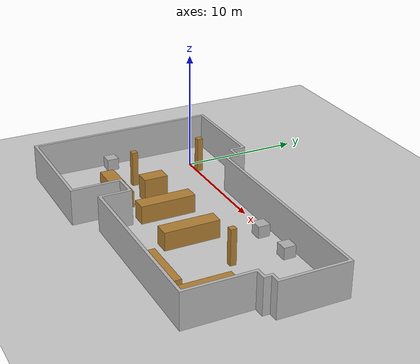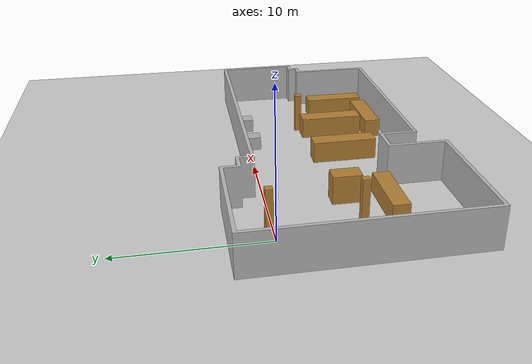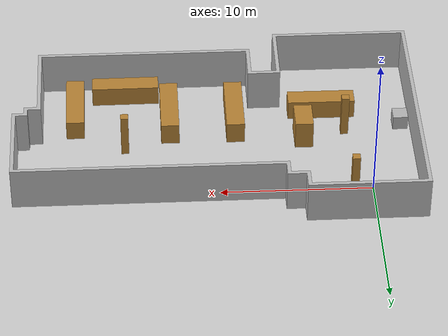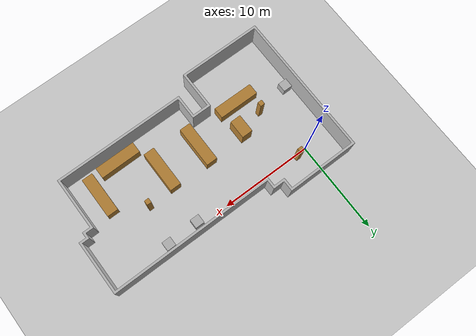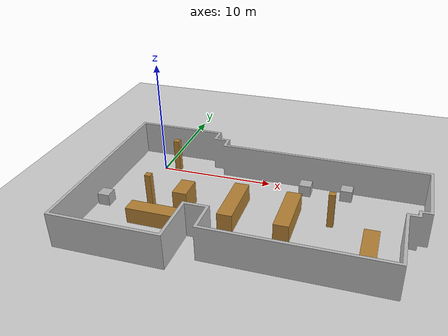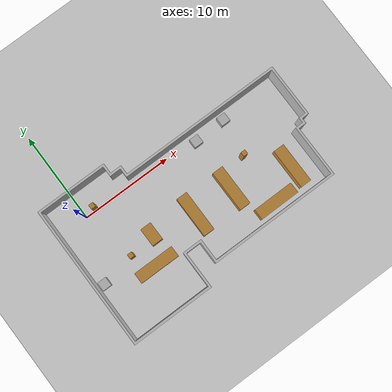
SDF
<sdf version='1.10'>
  <world name='factory'>
    <physics name='1ms' type='ignored'>
      <max_step_size>0.001</max_step_size>
      <real_time_factor>1</real_time_factor>
      <real_time_update_rate>1000</real_time_update_rate>
    </physics>
    <plugin name='gz::sim::systems::Physics' filename='gz-sim-physics-system'/>
    <plugin name='gz::sim::systems::UserCommands' filename='gz-sim-user-commands-system'/>
    <plugin name='gz::sim::systems::SceneBroadcaster' filename='gz-sim-scene-broadcaster-system'/>
    <plugin name='gz::sim::systems::Sensors' filename='gz-sim-sensors-system'>
      <render_engine>ogre2</render_engine>
    </plugin>
    <plugin name='gz::sim::systems::Imu' filename='gz-sim-imu-system'/>
    <plugin name='gz::sim::systems::Contact' filename='gz-sim-contact-system'/>
    <gravity>0 0 -9.8000000000000007</gravity>
    <magnetic_field>5.5644999999999998e-06 2.2875799999999999e-05 -4.2388400000000002e-05</magnetic_field>
    <atmosphere type='adiabatic'/>
    <scene>
      <ambient>0.400000006 0.400000006 0.400000006 1</ambient>
      <background>0.699999988 0.699999988 0.699999988 1</background>
      <shadows>true</shadows>
    </scene>
    <model name='ground_plane'>
      <static>true</static>
      <link name='link'>
        <collision name='collision'>
          <geometry>
            <plane>
              <normal>0 0 1</normal>
              <size>100 100</size>
            </plane>
          </geometry>
          <surface>
            <friction>
              <ode/>
            </friction>
            <bounce/>
            <contact/>
          </surface>
        </collision>
        <visual name='visual'>
          <geometry>
            <plane>
              <normal>0 0 1</normal>
              <size>100 100</size>
            </plane>
          </geometry>
          <material>
            <ambient>0.800000012 0.800000012 0.800000012 1</ambient>
            <diffuse>0.800000012 0.800000012 0.800000012 1</diffuse>
            <specular>0.5 0.5 0.5 1</specular>
          </material>
        </visual>
        <pose>0 0 0 0 0 0</pose>
        <inertial>
          <pose>0 0 0 0 0 0</pose>
          <mass>1</mass>
          <inertia>
            <ixx>1</ixx>
            <ixy>0</ixy>
            <ixz>0</ixz>
            <iyy>1</iyy>
            <iyz>0</iyz>
            <izz>1</izz>
          </inertia>
        </inertial>
        <enable_wind>false</enable_wind>
      </link>
      <pose>0 0 0 0 0 0</pose>
      <self_collide>false</self_collide>
    </model>
    <model name='table'>
      <static>true</static>
      <pose>4.1930999755859375 -5.3373074531555176 1 0 0 0</pose>
      <link name='link'>
        <collision name='collision'>
          <geometry>
            <box>
              <size>1.2 2 2</size>
            </box>
          </geometry>
          <surface>
            <friction>
              <ode/>
            </friction>
            <bounce/>
            <contact/>
          </surface>
        </collision>
        <visual name='visual'>
          <geometry>
            <box>
              <size>1.2 2 2</size>
            </box>
          </geometry>
          <material>
            <ambient>0.699999988 0.5 0.200000003 1</ambient>
            <diffuse>0.699999988 0.5 0.200000003 1</diffuse>
          </material>
        </visual>
        <pose>0 0 0 0 0 0</pose>
        <inertial>
          <pose>0 0 0 0 0 0</pose>
          <mass>1</mass>
          <inertia>
            <ixx>1</ixx>
            <ixy>0</ixy>
            <ixz>0</ixz>
            <iyy>1</iyy>
            <iyz>0</iyz>
            <izz>1</izz>
          </inertia>
        </inertial>
        <enable_wind>false</enable_wind>
      </link>
      <self_collide>false</self_collide>
    </model>
    <model name='fc_equipment'>
      <static>true</static>
      <pose>13.126899719238281 -6.4230499267578125 1.6 0 0 0</pose>
      <link name='link'>
        <collision name='collision'>
          <geometry>
            <box>
              <size>1.2 4.5 1.5</size>
            </box>
          </geometry>
          <surface>
            <friction>
              <ode/>
            </friction>
            <bounce/>
            <contact/>
          </surface>
        </collision>
        <visual name='visual'>
          <geometry>
            <box>
              <size>1.2 4.5 1.5</size>
            </box>
          </geometry>
          <material>
            <ambient>0.699999988 0.5 0.200000003 1</ambient>
            <diffuse>0.699999988 0.5 0.200000003 1</diffuse>
          </material>
        </visual>
        <pose>0 0 0 0 0 0</pose>
        <inertial>
          <pose>0 0 0 0 0 0</pose>
          <mass>1</mass>
          <inertia>
            <ixx>1</ixx>
            <ixy>0</ixy>
            <ixz>0</ixz>
            <iyy>1</iyy>
            <iyz>0</iyz>
            <izz>1</izz>
          </inertia>
        </inertial>
        <enable_wind>false</enable_wind>
      </link>
      <self_collide>false</self_collide>
    </model>
    <model name='fc_equipment2'>
      <static>true</static>
      <pose>8.7881498336791992 -6.3464679718017578 1.6 0 0 0</pose>
      <link name='link'>
        <collision name='collision'>
          <geometry>
            <box>
              <size>1.2 4.5 1.5</size>
            </box>
          </geometry>
          <surface>
            <friction>
              <ode/>
            </friction>
            <bounce/>
            <contact/>
          </surface>
        </collision>
        <visual name='visual'>
          <geometry>
            <box>
              <size>1.2 4.5 1.5</size>
            </box>
          </geometry>
          <material>
            <ambient>0.699999988 0.5 0.200000003 1</ambient>
            <diffuse>0.699999988 0.5 0.200000003 1</diffuse>
          </material>
        </visual>
        <pose>0 0 0 0 0 0</pose>
        <inertial>
          <pose>0 0 0 0 0 0</pose>
          <mass>1</mass>
          <inertia>
            <ixx>1</ixx>
            <ixy>0</ixy>
            <ixz>0</ixz>
            <iyy>1</iyy>
            <iyz>0</iyz>
            <izz>1</izz>
          </inertia>
        </inertial>
        <enable_wind>false</enable_wind>
      </link>
      <self_collide>false</self_collide>
    </model>
    <model name='fc_equipment3'>
      <static>true</static>
      <pose>16.037300109863281 -10.070199966430664 0.6 0 0 1.575780028147536</pose>
      <link name='link'>
        <collision name='collision'>
          <geometry>
            <box>
              <size>1.2 4.5 1.5</size>
            </box>
          </geometry>
          <surface>
            <friction>
              <ode/>
            </friction>
            <bounce/>
            <contact/>
          </surface>
        </collision>
        <visual name='visual'>
          <geometry>
            <box>
              <size>1.2 4.5 1.5</size>
            </box>
          </geometry>
          <material>
            <ambient>0.699999988 0.5 0.200000003 1</ambient>
            <diffuse>0.699999988 0.5 0.200000003 1</diffuse>
          </material>
        </visual>
        <pose>0 0 0 0 0 0</pose>
        <inertial>
          <pose>0 0 0 0 0 0</pose>
          <mass>1</mass>
          <inertia>
            <ixx>1</ixx>
            <ixy>0</ixy>
            <ixz>0</ixz>
            <iyy>1</iyy>
            <iyz>0</iyz>
            <izz>1</izz>
          </inertia>
        </inertial>
        <enable_wind>false</enable_wind>
      </link>
      <self_collide>false</self_collide>
    </model>
    <model name='fc_equipment4'>
      <static>true</static>
      <pose>19.447999954223633 -8.2234296798706055 0.6 0 0 0</pose>
      <link name='link'>
        <collision name='collision'>
          <geometry>
            <box>
              <size>1.2 4.5 1.5</size>
            </box>
          </geometry>
          <surface>
            <friction>
              <ode/>
            </friction>
            <bounce/>
            <contact/>
          </surface>
        </collision>
        <visual name='visual'>
          <geometry>
            <box>
              <size>1.2 4.5 1.5</size>
            </box>
          </geometry>
          <material>
            <ambient>0.699999988 0.5 0.200000003 1</ambient>
            <diffuse>0.699999988 0.5 0.200000003 1</diffuse>
          </material>
        </visual>
        <pose>0 0 0 0 0 0</pose>
        <inertial>
          <pose>0 0 0 0 0 0</pose>
          <mass>1</mass>
          <inertia>
            <ixx>1</ixx>
            <ixy>0</ixy>
            <ixz>0</ixz>
            <iyy>1</iyy>
            <iyz>0</iyz>
            <izz>1</izz>
          </inertia>
        </inertial>
        <enable_wind>false</enable_wind>
      </link>
      <self_collide>false</self_collide>
    </model>
    <model name='fc_equipment5'>
      <static>true</static>
      <pose>2.7992498874664307 -7.999539852142334 0.6 0 0 1.567839977365141</pose>
      <link name='link'>
        <collision name='collision'>
          <geometry>
            <box>
              <size>1.2 4.5 1.5</size>
            </box>
          </geometry>
          <surface>
            <friction>
              <ode/>
            </friction>
            <bounce/>
            <contact/>
          </surface>
        </collision>
        <visual name='visual'>
          <geometry>
            <box>
              <size>1.2 4.5 1.5</size>
            </box>
          </geometry>
          <material>
            <ambient>0.699999988 0.5 0.200000003 1</ambient>
            <diffuse>0.699999988 0.5 0.200000003 1</diffuse>
          </material>
        </visual>
        <pose>0 0 0 0 0 0</pose>
        <inertial>
          <pose>0 0 0 0 0 0</pose>
          <mass>1</mass>
          <inertia>
            <ixx>1</ixx>
            <ixy>0</ixy>
            <ixz>0</ixz>
            <iyy>1</iyy>
            <iyz>0</iyz>
            <izz>1</izz>
          </inertia>
        </inertial>
        <enable_wind>false</enable_wind>
      </link>
      <self_collide>false</self_collide>
    </model>
    <model name='my_mesh'>
      <pose>-3.7092299461364746 3.1429786682128906 0 0 0 0</pose>
      <static>true</static>
      <link name='body'>
        <collision name='collision'>
          <geometry>
            <mesh>
              <uri>file://outer_wall.dae</uri>
            </mesh>
          </geometry>
        </collision>
        <visual name='visual'>
          <geometry>
            <mesh>
              <uri>file://outer_wall.dae</uri>
            </mesh>
          </geometry>
        </visual>
        <pose>0 0 0 0 0 0</pose>
        <inertial>
          <pose>0 0 0 0 0 0</pose>
          <mass>1</mass>
          <inertia>
            <ixx>1</ixx>
            <ixy>0</ixy>
            <ixz>0</ixz>
            <iyy>1</iyy>
            <iyz>0</iyz>
            <izz>1</izz>
          </inertia>
        </inertial>
        <enable_wind>false</enable_wind>
      </link>
      <self_collide>false</self_collide>
    </model>
    <model name='box1_1'>
      <static>true</static>
      <pose>1.2341885745444152 0.25707381157128628 1.5 0 0 0</pose>
      <link name='link'>
        <collision name='collision'>
          <geometry>
            <box>
              <size>0.5 0.5 3</size>
            </box>
          </geometry>
          <surface>
            <friction>
              <ode/>
            </friction>
            <bounce/>
            <contact/>
          </surface>
        </collision>
        <visual name='visual'>
          <geometry>
            <box>
              <size>0.5 0.5 3</size>
            </box>
          </geometry>
          <material>
            <ambient>0.699999988 0.5 0.200000003 1</ambient>
            <diffuse>0.699999988 0.5 0.200000003 1</diffuse>
          </material>
        </visual>
        <pose>0 0 0 0 0 0</pose>
        <inertial>
          <pose>0 0 0 0 0 0</pose>
          <mass>1</mass>
          <inertia>
            <ixx>1</ixx>
            <ixy>0</ixy>
            <ixz>0</ixz>
            <iyy>1</iyy>
            <iyz>0</iyz>
            <izz>1</izz>
          </inertia>
        </inertial>
        <enable_wind>false</enable_wind>
      </link>
      <self_collide>false</self_collide>
    </model>
    <model name='box1_2'>
      <static>true</static>
      <pose>1.3824295143292904 -5.8360870103904343 1.5 0 0 0</pose>
      <link name='link'>
        <collision name='collision'>
          <geometry>
            <box>
              <size>0.5 0.5 3</size>
            </box>
          </geometry>
          <surface>
            <friction>
              <ode/>
            </friction>
            <bounce/>
            <contact/>
          </surface>
        </collision>
        <visual name='visual'>
          <geometry>
            <box>
              <size>0.5 0.5 3</size>
            </box>
          </geometry>
          <material>
            <ambient>0.699999988 0.5 0.200000003 1</ambient>
            <diffuse>0.699999988 0.5 0.200000003 1</diffuse>
          </material>
        </visual>
        <pose>0 0 0 0 0 0</pose>
        <inertial>
          <pose>0 0 0 0 0 0</pose>
          <mass>1</mass>
          <inertia>
            <ixx>1</ixx>
            <ixy>0</ixy>
            <ixz>0</ixz>
            <iyy>1</iyy>
            <iyz>0</iyz>
            <izz>1</izz>
          </inertia>
        </inertial>
        <enable_wind>false</enable_wind>
      </link>
      <self_collide>false</self_collide>
    </model>
    <model name='box'>
      <pose>-2.4393828606766554 -6.4323263085781379 0.49999999980497606 1.0048033485058014e-21 -2.4640853465547739e-21 -3.9210766489770922e-22</pose>
      <link name='box_link'>
        <inertial>
          <inertia>
            <ixx>0.16666</ixx>
            <ixy>0</ixy>
            <ixz>0</ixz>
            <iyy>0.16666</iyy>
            <iyz>0</iyz>
            <izz>0.16666</izz>
          </inertia>
          <mass>1</mass>
          <pose>0 0 0 0 0 0</pose>
        </inertial>
        <collision name='box_collision'>
          <geometry>
            <box>
              <size>1 1 1</size>
            </box>
          </geometry>
          <surface>
            <friction>
              <ode/>
            </friction>
            <bounce/>
            <contact/>
          </surface>
        </collision>
        <visual name='box_visual'>
          <geometry>
            <box>
              <size>1 1 1</size>
            </box>
          </geometry>
          <material>
            <ambient>0.300000012 0.300000012 0.300000012 1</ambient>
            <diffuse>0.699999988 0.699999988 0.699999988 1</diffuse>
            <specular>1 1 1 1</specular>
          </material>
        </visual>
        <pose>0 0 0 0 0 0</pose>
        <enable_wind>false</enable_wind>
      </link>
      <static>false</static>
      <self_collide>false</self_collide>
    </model>
    <model name='box_0'>
      <pose>13.343768638412651 -0.45436367956171964 0.49999999980497606 1.0048033485058014e-21 -2.4640853465547739e-21 -3.9210766489770922e-22</pose>
      <link name='box_link'>
        <inertial>
          <inertia>
            <ixx>0.16666</ixx>
            <ixy>0</ixy>
            <ixz>0</ixz>
            <iyy>0.16666</iyy>
            <iyz>0</iyz>
            <izz>0.16666</izz>
          </inertia>
          <mass>1</mass>
          <pose>0 0 0 0 0 0</pose>
        </inertial>
        <collision name='box_collision'>
          <geometry>
            <box>
              <size>1 1 1</size>
            </box>
          </geometry>
          <surface>
            <friction>
              <ode/>
            </friction>
            <bounce/>
            <contact/>
          </surface>
        </collision>
        <visual name='box_visual'>
          <geometry>
            <box>
              <size>1 1 1</size>
            </box>
          </geometry>
          <material>
            <ambient>0.300000012 0.300000012 0.300000012 1</ambient>
            <diffuse>0.699999988 0.699999988 0.699999988 1</diffuse>
            <specular>1 1 1 1</specular>
          </material>
        </visual>
        <pose>0 0 0 0 0 0</pose>
        <enable_wind>false</enable_wind>
      </link>
      <static>false</static>
      <self_collide>false</self_collide>
    </model>
    <model name='box_1'>
      <pose>16.842394125456206 -0.31724643124007912 0.49999999980497606 1.0048033485058014e-21 -2.4640853465547739e-21 -3.9210766489770922e-22</pose>
      <link name='box_link'>
        <inertial>
          <inertia>
            <ixx>0.16666</ixx>
            <ixy>0</ixy>
            <ixz>0</ixz>
            <iyy>0.16666</iyy>
            <iyz>0</iyz>
            <izz>0.16666</izz>
          </inertia>
          <mass>1</mass>
          <pose>0 0 0 0 0 0</pose>
        </inertial>
        <collision name='box_collision'>
          <geometry>
            <box>
              <size>1 1 1</size>
            </box>
          </geometry>
          <surface>
            <friction>
              <ode/>
            </friction>
            <bounce/>
            <contact/>
          </surface>
        </collision>
        <visual name='box_visual'>
          <geometry>
            <box>
              <size>1 1 1</size>
            </box>
          </geometry>
          <material>
            <ambient>0.300000012 0.300000012 0.300000012 1</ambient>
            <diffuse>0.699999988 0.699999988 0.699999988 1</diffuse>
            <specular>1 1 1 1</specular>
          </material>
        </visual>
        <pose>0 0 0 0 0 0</pose>
        <enable_wind>false</enable_wind>
      </link>
      <static>false</static>
      <self_collide>false</self_collide>
    </model>
    <model name='box1_3'>
      <static>true</static>
      <pose>16.141328494540023 -4.4718224702764262 1.5 0 0 0</pose>
      <link name='link'>
        <collision name='collision'>
          <geometry>
            <box>
              <size>0.5 0.5 3</size>
            </box>
          </geometry>
          <surface>
            <friction>
              <ode/>
            </friction>
            <bounce/>
            <contact/>
          </surface>
        </collision>
        <visual name='visual'>
          <geometry>
            <box>
              <size>0.5 0.5 3</size>
            </box>
          </geometry>
          <material>
            <ambient>0.699999988 0.5 0.200000003 1</ambient>
            <diffuse>0.699999988 0.5 0.200000003 1</diffuse>
          </material>
        </visual>
        <pose>0 0 0 0 0 0</pose>
        <inertial>
          <pose>0 0 0 0 0 0</pose>
          <mass>1</mass>
          <inertia>
            <ixx>1</ixx>
            <ixy>0</ixy>
            <ixz>0</ixz>
            <iyy>1</iyy>
            <iyz>0</iyz>
            <izz>1</izz>
          </inertia>
        </inertial>
        <enable_wind>false</enable_wind>
      </link>
      <self_collide>false</self_collide>
    </model>
    <light name='sun' type='directional'>
      <pose>0 0 10 0 0 0</pose>
      <cast_shadows>true</cast_shadows>
      <intensity>1</intensity>
      <direction>-0.5 0.10000000000000001 -0.90000000000000002</direction>
      <diffuse>0.800000012 0.800000012 0.800000012 1</diffuse>
      <specular>0.200000003 0.200000003 0.200000003 1</specular>
      <attenuation>
        <range>1000</range>
        <linear>0.0099999997764825821</linear>
        <constant>0.89999997615814209</constant>
        <quadratic>0.0010000000474974513</quadratic>
      </attenuation>
      <spot>
        <inner_angle>0</inner_angle>
        <outer_angle>0</outer_angle>
        <falloff>0</falloff>
      </spot>
    </light>
  </world>
</sdf>
